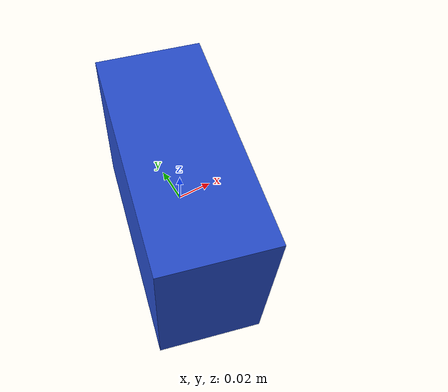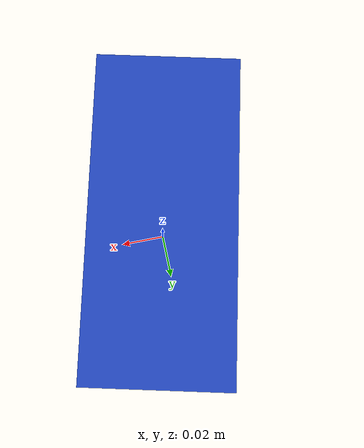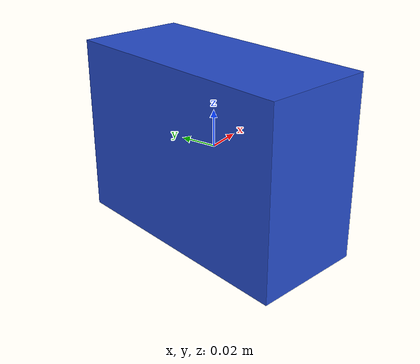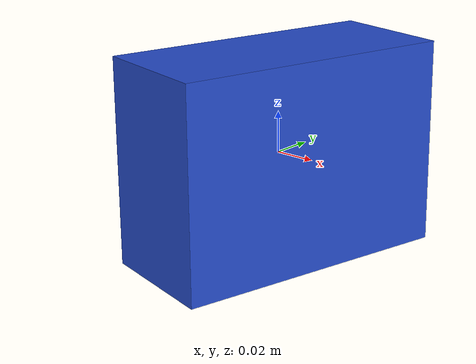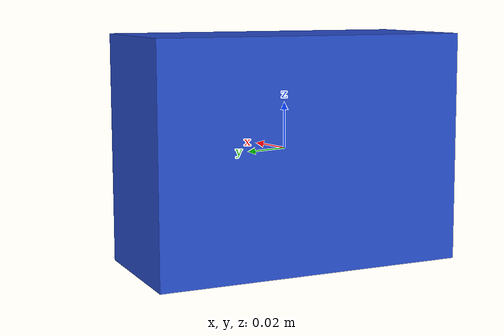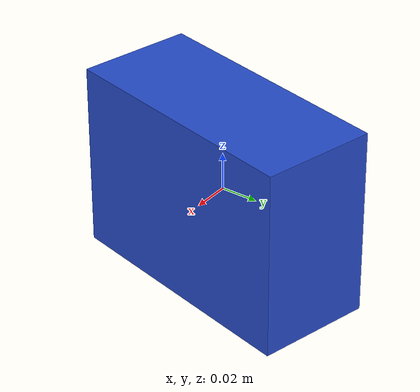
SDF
<sdf version="1.6"><model name="model_9"><static>true</static><link name="link"><pose>0 0 0 0 0 1.3324733719854496</pose><collision name="collision"><geometry><box><size>0.1375524010385873 0.06122029918370673 0.1</size></box></geometry></collision><visual name="visual"><geometry><box><size>0.1375524010385873 0.06122029918370673 0.1</size></box></geometry><material><script><name>Gazebo/Blue</name><uri>file://media/materials/scripts/gazebo.material</uri></script></material></visual></link></model></sdf>
